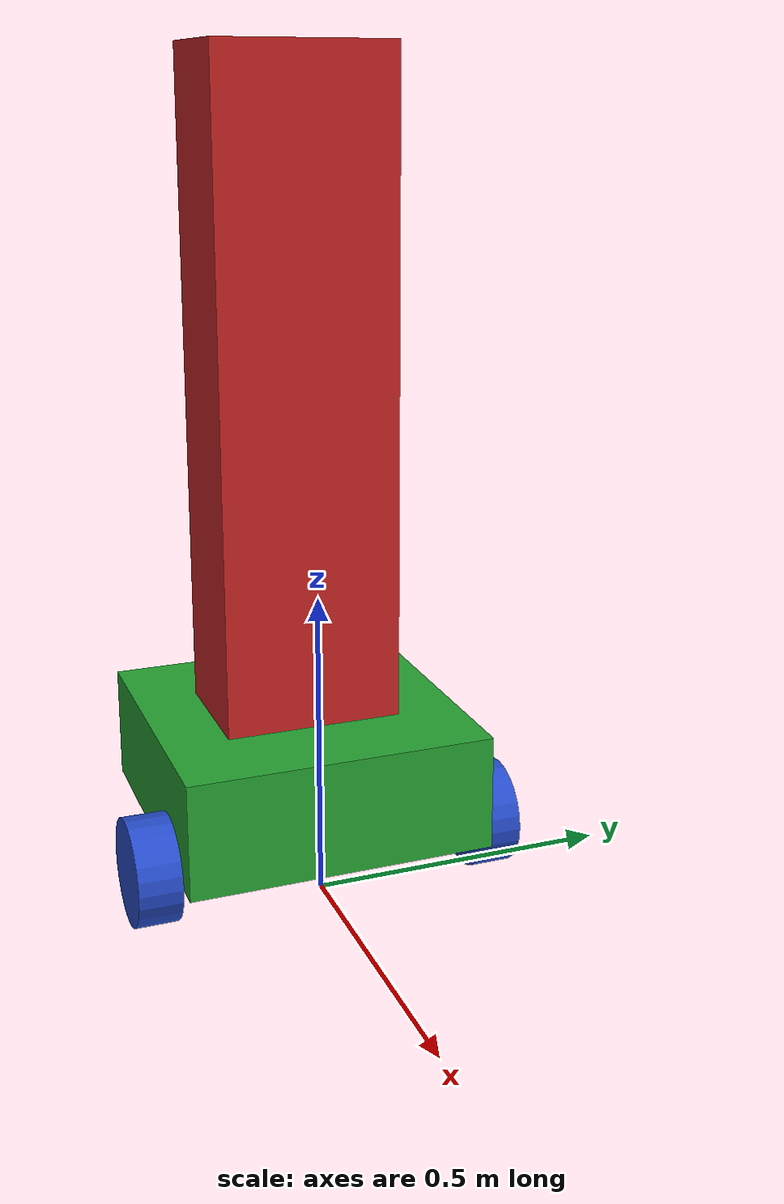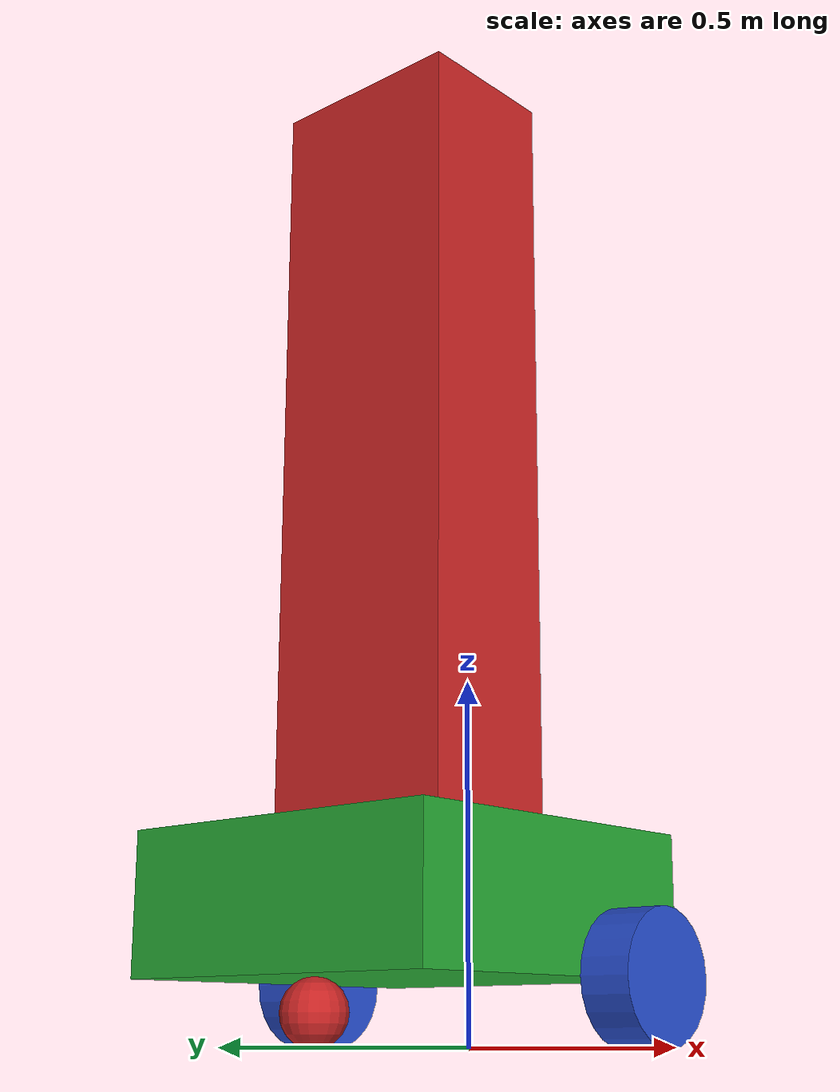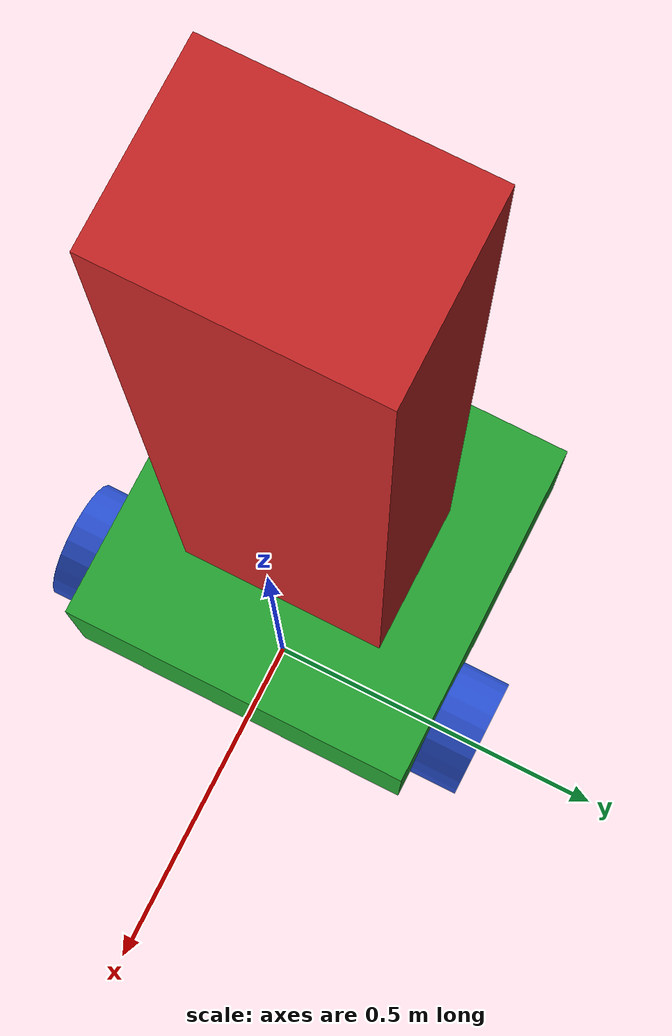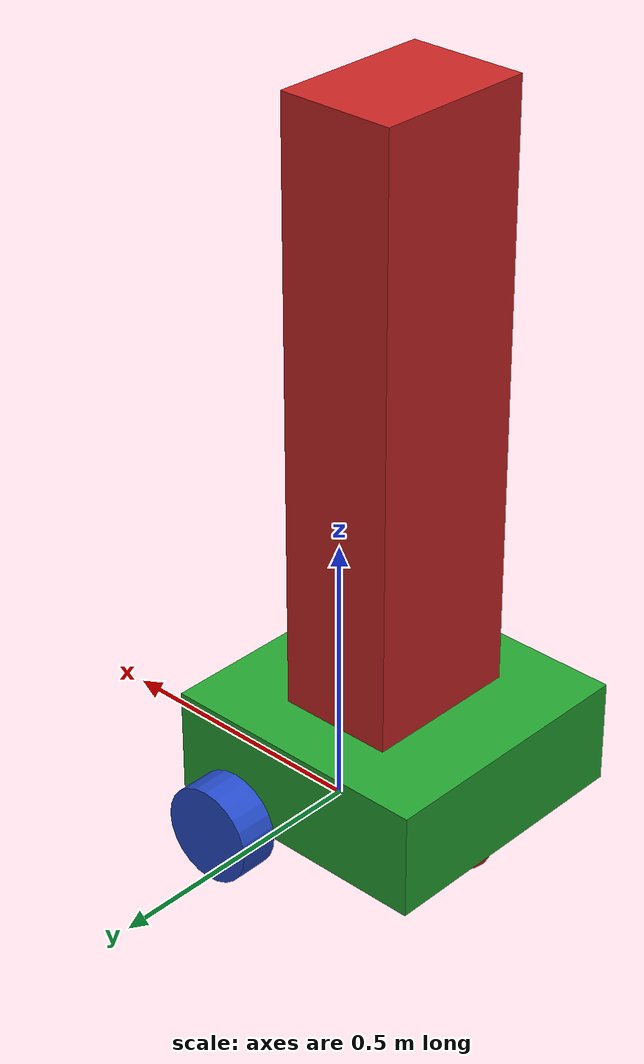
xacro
<?xml version="1.0"?>
<robot name="my_robot" xmlns:xacro="http://www.ros.org/wiki/xacro">
  <xacro:arg name="is_ignition" default="false"/>
  <xacro:arg name="is_sim" default="false"/>

  <xacro:include filename="common_properties.xacro" />
  <xacro:include filename="mobile_base.xacro" />
  <xacro:include filename="mobile_base_gazebo.xacro" />
  <xacro:include filename="ros2_control.xacro" />
  <xacro:include filename="sensors.xacro"/>
</robot>

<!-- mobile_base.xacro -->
<robot xmlns:xacro="http://www.ros.org/wiki/xacro">

    <!--Dinamic
    var using xacro-->
    <xacro:property name="base_length" value="0.5" />
    <xacro:property name="base_width" value="0.5" />
    <xacro:property name="base_height" value="0.19" />
    <xacro:property name="wheel_radius" value="0.0865" />
    <xacro:property name="wheel_length" value="0.07" />
    <xacro:property name="upper_base_length" value="0.21" />
    <xacro:property name="upper_base_width" value="0.29" />
    <xacro:property name="upper_base_height" value="1.064"/>

    <!-- Define links -->
    <link name="base_footprint" />

    <link name="base_link">
        <visual>
            <geometry>
                <box size="${base_length} ${base_width} ${base_height}" />
            </geometry>
            <origin xyz="${-base_length / 4.0} 0 ${base_height/2.0}" rpy="0 0 0" />
            <material name="green" />
        </visual>

        <collision>
            <geometry>
                <box size="${base_length} ${base_width} ${base_height}" />
            </geometry>
            <origin xyz="0 0 ${base_height/2.0}" rpy="0 0 0" />
            <material name="green" />
        </collision>

        <xacro:box_inertia m="5.0" l="${base_length}" w="${base_width}" h="${base_height}"
            xyz="0 0 ${base_height/2.0}" rpy="0 0 0" />
    </link>

    <link name="upper_base_link">
        <visual>
            <geometry>
                <box size="${upper_base_length} ${upper_base_width} ${upper_base_height}" />
            </geometry>
            <origin xyz="0 0 0" rpy="0 0 0" />
            <material name="red" />
        </visual>

        <collision>
            <geometry>
                <box size="${upper_base_length} ${upper_base_width} ${upper_base_height}" />
            </geometry>
            <origin xyz="0 0 0" rpy="0 0 0" />
        </collision>

        <xacro:box_inertia m="5.0" l="${upper_base_length}" w="${upper_base_width}" h="${upper_base_height}"
            xyz="0 0 ${base_height + upper_base_height / 2.0}" rpy="0 0 0" />
    </link>
    <!--Function
    with xacro-->
    <xacro:macro name="wheel_link" params="prefix">
        <link name="${prefix}_wheel_link">
            <visual>
                <geometry>
                    <cylinder radius="${wheel_radius}" length="${wheel_length}" />
                </geometry>
                <origin xyz="0 0 0" rpy="${pi/2.0} 0 0" />
                <material name="blue" />
            </visual>

            <collision>
                <geometry>
                    <cylinder radius="${wheel_radius}" length="${wheel_length}" />
                </geometry>
                <origin xyz="0 0 0" rpy="${pi/2.0} 0 0" />
            </collision>
            <xacro:cylinder_inertia m="1.0" h="${wheel_length}" r="${wheel_radius}"
                xyz="0 0 0" rpy="${pi/2.0} 0 0" />
        </link>
    </xacro:macro>

    <!-- Use the macro to create wheel links -->
    <xacro:wheel_link prefix="right" />
    <xacro:wheel_link prefix="left" />

    <link name="caster_wheel_link">
        <visual>
            <geometry>
                <sphere radius="${wheel_radius / 2.0}" />
            </geometry>
            <origin xyz="0 0 0" rpy="0 0 0" />
            <material name="red" />
        </visual>
        <collision>
            <geometry>
                <sphere radius="${wheel_radius / 2.0}" />
            </geometry>
            <origin xyz="0 0 0" rpy="0 0 0" />
        </collision>
        <xacro:shpere_inertia m="5.0" r="${wheel_radius / 2.0}"
            xyz="0 0 0" rpy="0 0 0" />
    </link>

    <!-- Define joints -->
    <joint name="base_joint" type="fixed">
        <parent link="base_footprint" />
        <child link="base_link" />
        <origin xyz="0 0 ${wheel_radius}" rpy="0 0 0" />
    </joint>

    <joint name="base_right_wheel_joint" type="continuous">
        <parent link="base_link" />
        <child link="right_wheel_link" />
        <origin xyz="0 ${-(base_width + wheel_length) / 2.0} 0" rpy="0 0 0" />
        <axis xyz="0 1 0" />
    </joint>

    <joint name="base_left_wheel_joint" type="continuous">
        <parent link="base_link" />
        <child link="left_wheel_link" />
        <origin xyz="0 ${(base_width + wheel_length) / 2.0} 0" rpy="0 0 0" />
        <axis xyz="0 1 0" />
    </joint>

    <joint name="base_caster_wheel_joint" type="fixed">
        <parent link="base_link" />
        <child link="caster_wheel_link" />
        <origin xyz="${-base_length / 4.0 - base_length / 3.0} 0 ${-wheel_radius / 2.0}" rpy="0 0 0" />
        <axis xyz="0 1 0" />
    </joint>

    <joint name="upper_base_joint" type="fixed">
        <parent link="base_link" />
        <child link="upper_base_link" />
        <origin xyz="${-base_length / 4.0} 0 ${base_height + upper_base_height / 2.0}" rpy="0 0 0" />
    </joint>

</robot>

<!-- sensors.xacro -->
<robot xmlns:xacro="http://www.ros.org/wiki/xacro">
    <xacro:property name="lidar_height" value="0.037" />
    <xacro:property name="lidar_radius" value="0.0345" />

    <!-- Include lidar -->
    <link name="laser">
        <visual>
            <geometry>
                <cylinder radius="${lidar_height}" length="${lidar_radius}" />
            </geometry>
            <origin xyz="0 0 ${lidar_height/2 - 0.026}" rpy="0 0 0" />
            <material name="grey" />
        </visual>
        <collision>
            <geometry>
                <cylinder radius="${lidar_height}" length="${lidar_radius}" />
            </geometry>
            <origin xyz="0 0 ${lidar_height/4}" rpy="0 0 0" />
            <material name="grey" />
        </collision>
    </link>

    <!-- Include IMU -->
    <link name="imu">
        <visual>
            <geometry>
                <box size="0.05 0.05 0.01" />
            </geometry>
            <origin xyz="0 0 0" rpy="0 0 0" />
            <material name="grey" />
        </visual>
        <collision>
            <geometry>
                <box size="0.05 0.05 0.01" />
            </geometry>
            <origin xyz="0 0 0" rpy="0 0 0" />
            <material name="grey" />
        </collision>
    </link>

    <joint name="laser_joint" type="fixed">
        <parent link="base_link" />
        <child link="laser" />
        <origin xyz="${-base_length / 4.0} 0 ${base_height + 0.026}" rpy="0 0 0" />
    </joint>

    <joint name="imu_joint" type="fixed">
        <parent link="base_link" />
        <child link="imu" />
        <origin xyz="${-base_length / 4.0} 0 ${(base_height + 0.026) / 2.0}" rpy="0 0 0" />
    </joint>

    <gazebo reference="laser">
        <sensor name="laser" type="ray">
            <pose> 0 0 0 0 0 0 </pose>
            <visualize>true</visualize>
            <update_rate>10.0</update_rate>
            <ray>
                <scan>
                    <horizontal>
                        <sample>720</sample>
                        <resolution>1</resolution>
                        <min_angle>-3.14</min_angle>
                        <max_angle>3.14</max_angle>
                    </horizontal>
                </scan>
                <range>
                    <min>0.5</min>
                    <max>18.0</max>
                    <resolution>1</resolution>
                </range>
            </ray>
            <plugin name="laser_controller" filename="libgazebo_ros_ray_sensor.so">
                <ros>
                    <argument>~/out:=scan</argument>
                </ros>
                <output_type>sensor_msgs/LaserScan</output_type>
                <frame_name>laser</frame_name>
            </plugin>
        </sensor>
    </gazebo>

</robot>
